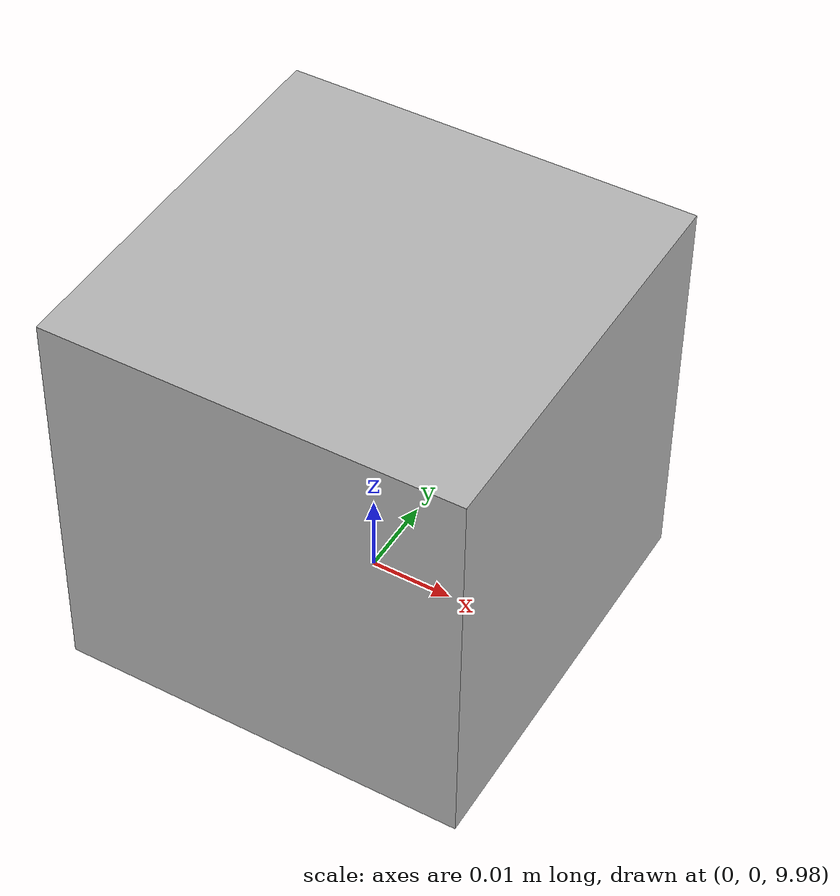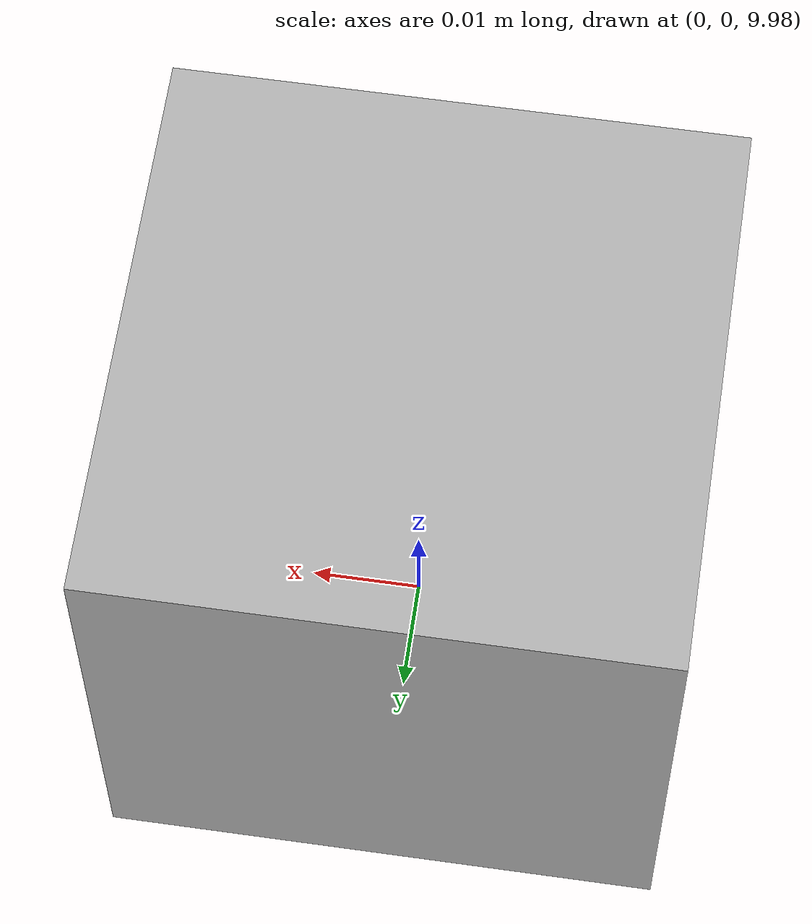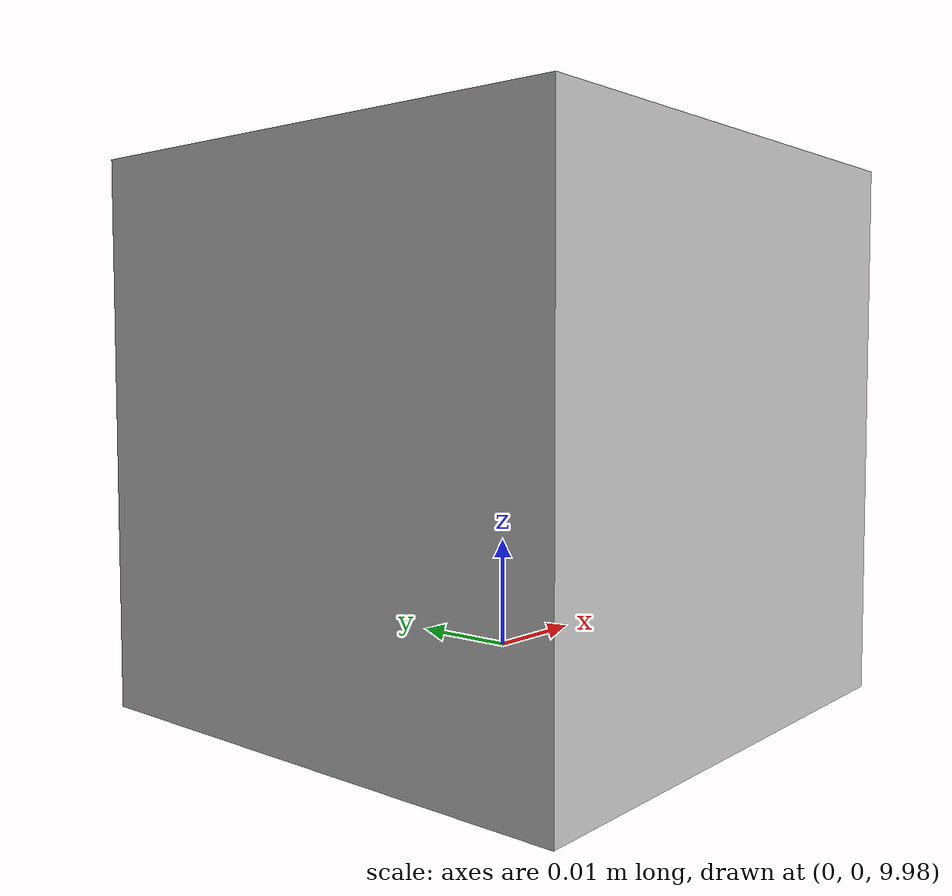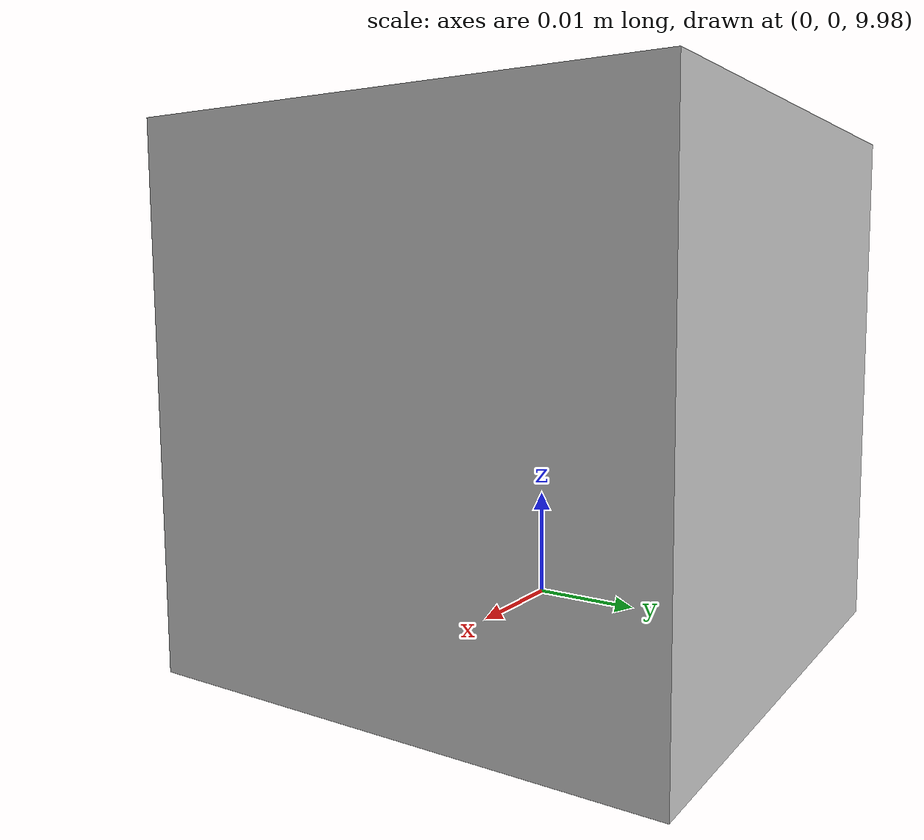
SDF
<?xml version='1.0'?>
<sdf version="1.4">
  <model name="mine_model">
    <pose>0 0 10.0 0 0 0</pose>
    <static>false</static>
    <link name="mine_link_gowno">
      <inertial>
        <mass>0.02</mass>
        <inertia>
          <ixx>0.00004167</ixx>
          <ixy>0.0</ixy>
          <ixz>0.0</ixz>
          <iyy>0.00004167</iyy>
          <iyz>0.0</iyz>
          <izz>0.00004167</izz>
        </inertia>
      </inertial>
      <collision name="collision">
        <geometry>
          <box>
            <size>0.05 0.05 0.05</size>
          </box>
        </geometry>
      </collision>
      <visual name="visual">
        <geometry>
          <box>
            <size>0.05 0.05 0.05</size>
          </box>
        </geometry>
      </visual>
    </link>
  </model>
</sdf>
